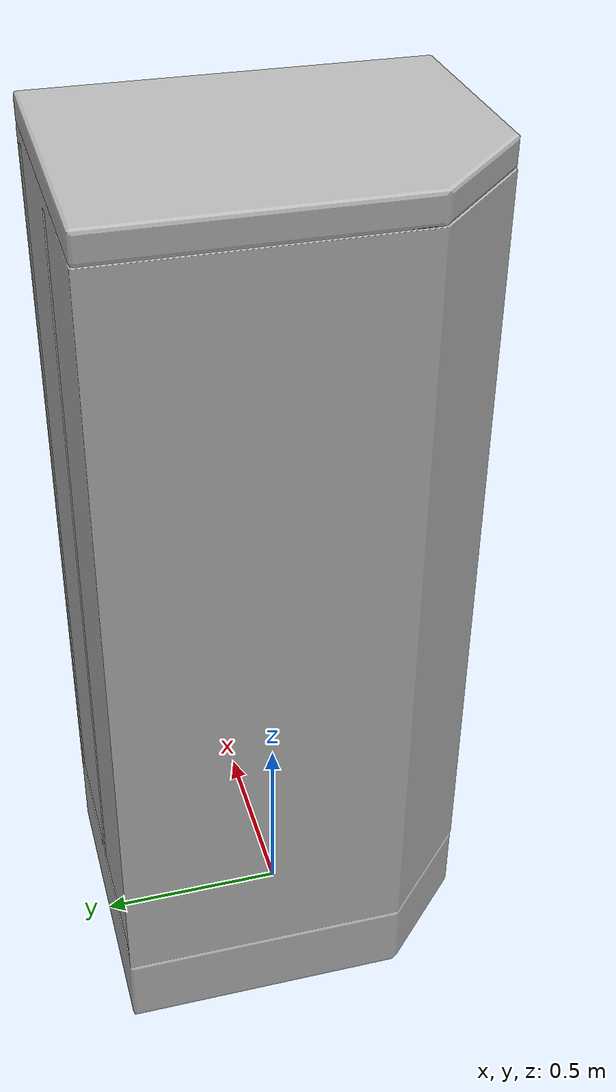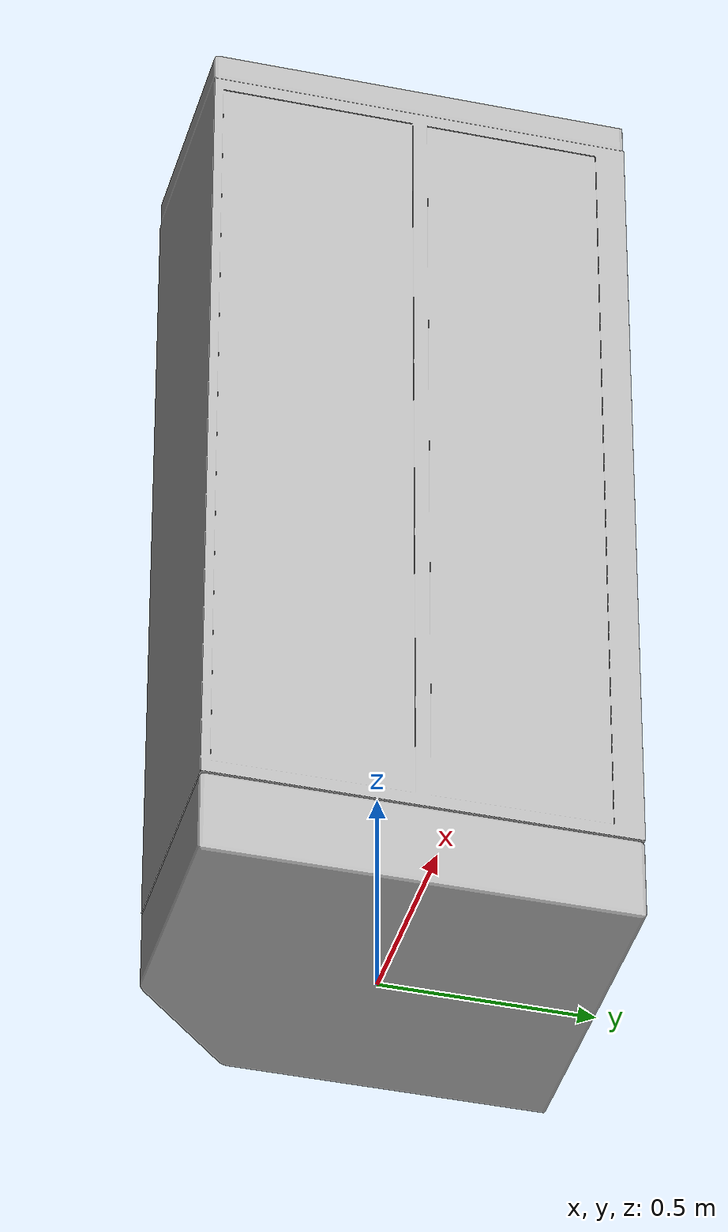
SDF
<?xml version='1.0'?>
<sdf version='1.4'>
  <model name='135'>
    <pose>0 0 0 0 0 0</pose>
    <static>true</static>
    <link name='link'>
      <collision name='collision'>
        <pose>0 0 0 0 0 0</pose>
        <geometry>
          <box>
            <size>0.800004 1.00001 2</size>
          </box>
        </geometry>
      </collision>
      <visual name='visual'>
        <pose>0 0 0 0 0 0</pose>
        <geometry>
          <mesh><uri>model://135/135.dae</uri></mesh>
        </geometry>
      </visual>
    </link>
  </model>
</sdf>
